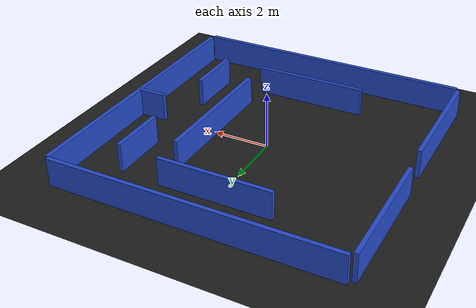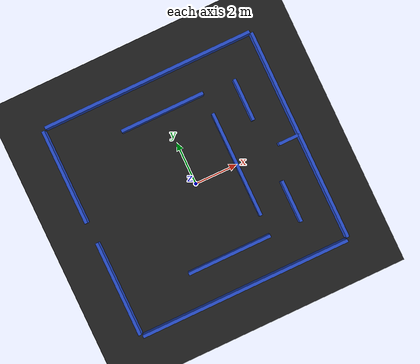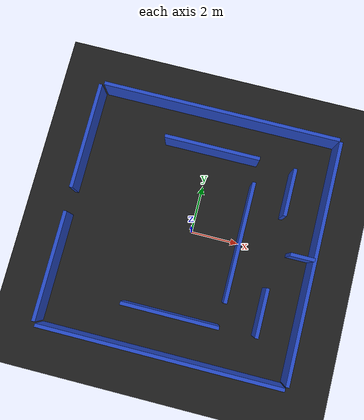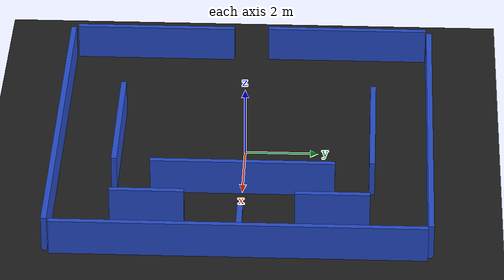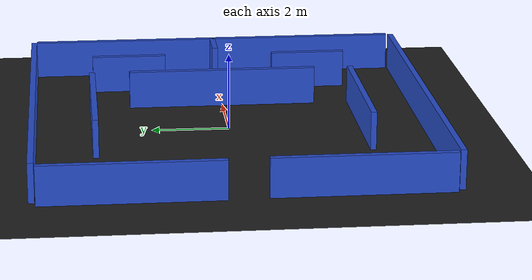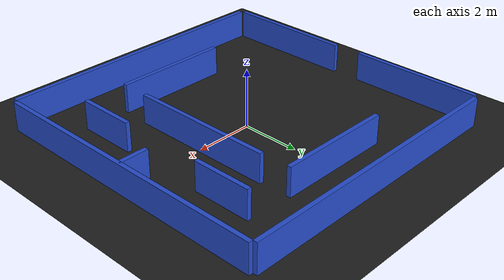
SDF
<sdf version="1.4">
 <world name="default">
  <light name="sun" type="directional">
   <pose>0 0 10 0 -0 0</pose>
   <diffuse>0.8 0.8 0.8 1</diffuse>
   <specular>0.2 0.2 0.2 1</specular>
   <attenuation>
    <range>1000</range>
    <constant>0.9</constant>
    <linear>0.01</linear>
    <quadratic>0.001</quadratic>
   </attenuation>
   <direction>-0.5 0.1 -0.9</direction>
  </light>
  <model name="ground_plane">
   <static>1</static>
   <link name="link">
    <collision name="collision">
     <geometry><plane><normal>0 0 1</normal><size>100 100</size></plane></geometry>
     <surface><friction><ode><mu>100</mu><mu2>50</mu2></ode></friction></surface>
    </collision>
    <visual name="visual">
     <cast_shadows>0</cast_shadows>
     <geometry><plane><normal>0 0 1</normal><size>100 100</size></plane></geometry>
     <material>
      <script><uri>file://media/materials/scripts/gazebo.material</uri><name>Gazebo/Black</name></script>
     </material>
    </visual>
    <velocity_decay><linear>0</linear><angular>0</angular></velocity_decay>
   </link>
  </model>
  <physics type="ode">
   <max_step_size>0.001</max_step_size>
   <real_time_factor>1</real_time_factor>
   <real_time_update_rate>1000</real_time_update_rate>
   <gravity>0 0 -9.8</gravity>
  </physics>
  <scene><ambient>0.4 0.4 0.4 1</ambient><background>0.7 0.7 0.7 1</background><shadows>1</shadows></scene>
  <spherical_coordinates>
   <surface_model>EARTH_WGS84</surface_model>
   <latitude_deg>0</latitude_deg>
   <longitude_deg>0</longitude_deg>
   <elevation>0</elevation>
   <heading_deg>0</heading_deg>
  </spherical_coordinates>
  <model name="unit_box_1">
   <pose>0 -5.12076 0.5 0 -0 0</pose>
   <link name="link">
    <inertial>
     <mass>1</mass>
     <inertia><ixx>1</ixx><ixy>0</ixy><ixz>0</ixz><iyy>1</iyy><iyz>0</iyz><izz>1</izz></inertia>
    </inertial>
    <collision name="collision"><geometry><box><size>10 0.15 1</size></box></geometry></collision>
    <visual name="visual">
     <geometry><box><size>10 0.15 1</size></box></geometry>
     <material>
      <script><uri>file://media/materials/scripts/gazebo.material</uri><name>Gazebo/Blue</name></script>
     </material>
    </visual>
    <velocity_decay><linear>0</linear><angular>0</angular></velocity_decay>
   </link>
   <static>1</static>
  </model>
  <model name="unit_box_2">
   <pose>0 5.07314 0.5 0 -0 0</pose>
   <link name="link">
    <inertial>
     <mass>1</mass>
     <inertia><ixx>1</ixx><ixy>0</ixy><ixz>0</ixz><iyy>1</iyy><iyz>0</iyz><izz>1</izz></inertia>
    </inertial>
    <collision name="collision"><geometry><box><size>10 0.15 1</size></box></geometry></collision>
    <visual name="visual">
     <geometry><box><size>10 0.15 1</size></box></geometry>
     <material>
      <script><uri>file://media/materials/scripts/gazebo.material</uri><name>Gazebo/Blue</name></script>
     </material>
    </visual>
    <velocity_decay><linear>0</linear><angular>0</angular></velocity_decay>
   </link>
   <static>1</static>
  </model>
  <model name="unit_box_3">
   <pose>5.06249 0 0.5 0 -0 0</pose>
   <link name="link">
    <inertial>
     <mass>1</mass>
     <inertia><ixx>1</ixx><ixy>0</ixy><ixz>0</ixz><iyy>1</iyy><iyz>0</iyz><izz>1</izz></inertia>
    </inertial>
    <collision name="collision"><geometry><box><size>0.15 10 1</size></box></geometry></collision>
    <visual name="visual">
     <geometry><box><size>0.15 10 1</size></box></geometry>
     <material>
      <script><uri>file://media/materials/scripts/gazebo.material</uri><name>Gazebo/Blue</name></script>
     </material>
    </visual>
    <velocity_decay><linear>0</linear><angular>0</angular></velocity_decay>
   </link>
   <static>1</static>
  </model>
  <model name="unit_box_4">
   <pose>-5.13518 2.72795 0.5 0 -0 0</pose>
   <link name="link">
    <inertial>
     <mass>1</mass>
     <inertia><ixx>1</ixx><ixy>0</ixy><ixz>0</ixz><iyy>1</iyy><iyz>0</iyz><izz>1</izz></inertia>
    </inertial>
    <collision name="collision"><geometry><box><size>0.15 4.5 1</size></box></geometry></collision>
    <visual name="visual">
     <geometry><box><size>0.15 4.5 1</size></box></geometry>
     <material>
      <script><uri>file://media/materials/scripts/gazebo.material</uri><name>Gazebo/Blue</name></script>
     </material>
    </visual>
    <velocity_decay><linear>0</linear><angular>0</angular></velocity_decay>
   </link>
   <static>1</static>
  </model>
  <model name="unit_box_5">
   <pose>-5.08976 -2.7493 0.5 0 -0 0</pose>
   <link name="link">
    <inertial>
     <mass>1</mass>
     <inertia><ixx>1</ixx><ixy>0</ixy><ixz>0</ixz><iyy>1</iyy><iyz>0</iyz><izz>1</izz></inertia>
    </inertial>
    <collision name="collision"><geometry><box><size>0.15 4.5 1</size></box></geometry></collision>
    <visual name="visual">
     <geometry><box><size>0.15 4.5 1</size></box></geometry>
     <material>
      <script><uri>file://media/materials/scripts/gazebo.material</uri><name>Gazebo/Blue</name></script>
     </material>
    </visual>
    <velocity_decay><linear>0</linear><angular>0</angular></velocity_decay>
   </link>
   <static>1</static>
  </model>
  <model name="unit_box_1_0">
   <pose>2 0 0.5 0 -0 0</pose>
   <link name="link">
    <inertial>
     <mass>1</mass>
     <inertia><ixx>1</ixx><ixy>0</ixy><ixz>0</ixz><iyy>1</iyy><iyz>0</iyz><izz>1</izz></inertia>
    </inertial>
    <collision name="collision"><geometry><box><size>0.15 5 1</size></box></geometry></collision>
    <visual name="visual">
     <geometry><box><size>0.15 5 1</size></box></geometry>
     <material>
      <script><uri>file://media/materials/scripts/gazebo.material</uri><name>Gazebo/Blue</name></script>
     </material>
    </visual>
    <velocity_decay><linear>0</linear><angular>0</angular></velocity_decay>
   </link>
   <static>1</static>
  </model>
  <model name="unit_box_2_0">
   <pose>0 -3.47909 0.5 0 -0 0</pose>
   <link name="link">
    <inertial>
     <mass>1</mass>
     <inertia><ixx>1</ixx><ixy>0</ixy><ixz>0</ixz><iyy>1</iyy><iyz>0</iyz><izz>1</izz></inertia>
    </inertial>
    <collision name="collision"><geometry><box><size>4 0.15 1</size></box></geometry></collision>
    <visual name="visual">
     <geometry><box><size>4 0.15 1</size></box></geometry>
     <material>
      <script><uri>file://media/materials/scripts/gazebo.material</uri><name>Gazebo/Blue</name></script>
     </material>
    </visual>
    <velocity_decay><linear>0</linear><angular>0</angular></velocity_decay>
   </link>
   <static>1</static>
  </model>
  <model name="unit_box_3_0">
   <pose>0 3.50145 0.5 0 -0 0</pose>
   <link name="link">
    <inertial>
     <mass>1</mass>
     <inertia><ixx>1</ixx><ixy>0</ixy><ixz>0</ixz><iyy>1</iyy><iyz>0</iyz><izz>1</izz></inertia>
    </inertial>
    <collision name="collision"><geometry><box><size>4 0.15 1</size></box></geometry></collision>
    <visual name="visual">
     <geometry><box><size>4 0.15 1</size></box></geometry>
     <material>
      <script><uri>file://media/materials/scripts/gazebo.material</uri><name>Gazebo/Blue</name></script>
     </material>
    </visual>
    <velocity_decay><linear>0</linear><angular>0</angular></velocity_decay>
   </link>
   <static>1</static>
  </model>
  <model name="unit_box_4_0">
   <pose>3.49415 -2.50615 0.5 0 -0 0</pose>
   <link name="link">
    <inertial>
     <mass>1</mass>
     <inertia><ixx>1</ixx><ixy>0</ixy><ixz>0</ixz><iyy>1</iyy><iyz>0</iyz><izz>1</izz></inertia>
    </inertial>
    <collision name="collision"><geometry><box><size>0.15 2 1</size></box></geometry></collision>
    <visual name="visual">
     <geometry><box><size>0.15 2 1</size></box></geometry>
     <material>
      <script><uri>file://media/materials/scripts/gazebo.material</uri><name>Gazebo/Blue</name></script>
     </material>
    </visual>
    <velocity_decay><linear>0</linear><angular>0</angular></velocity_decay>
   </link>
   <static>1</static>
  </model>
  <model name="unit_box_5_0">
   <pose>3.49995 2.45635 0.5 0 -0 0</pose>
   <link name="link">
    <inertial>
     <mass>1</mass>
     <inertia><ixx>1</ixx><ixy>0</ixy><ixz>0</ixz><iyy>1</iyy><iyz>0</iyz><izz>1</izz></inertia>
    </inertial>
    <collision name="collision"><geometry><box><size>0.15 2 1</size></box></geometry></collision>
    <visual name="visual">
     <geometry><box><size>0.15 2 1</size></box></geometry>
     <material>
      <script><uri>file://media/materials/scripts/gazebo.material</uri><name>Gazebo/Blue</name></script>
     </material>
    </visual>
    <velocity_decay><linear>0</linear><angular>0</angular></velocity_decay>
   </link>
   <static>1</static>
  </model>
  <model name="unit_box_6">
   <pose>4.55276 0.018923 0.5 0 -0 0</pose>
   <link name="link">
    <inertial>
     <mass>1</mass>
     <inertia><ixx>1</ixx><ixy>0</ixy><ixz>0</ixz><iyy>1</iyy><iyz>0</iyz><izz>1</izz></inertia>
    </inertial>
    <collision name="collision"><geometry><box><size>1 0.15 1</size></box></geometry></collision>
    <visual name="visual">
     <geometry><box><size>1 0.15 1</size></box></geometry>
     <material>
      <script><uri>file://media/materials/scripts/gazebo.material</uri><name>Gazebo/Blue</name></script>
     </material>
    </visual>
    <velocity_decay><linear>0</linear><angular>0</angular></velocity_decay>
   </link>
   <static>1</static>
  </model>
 </world>
</sdf>
